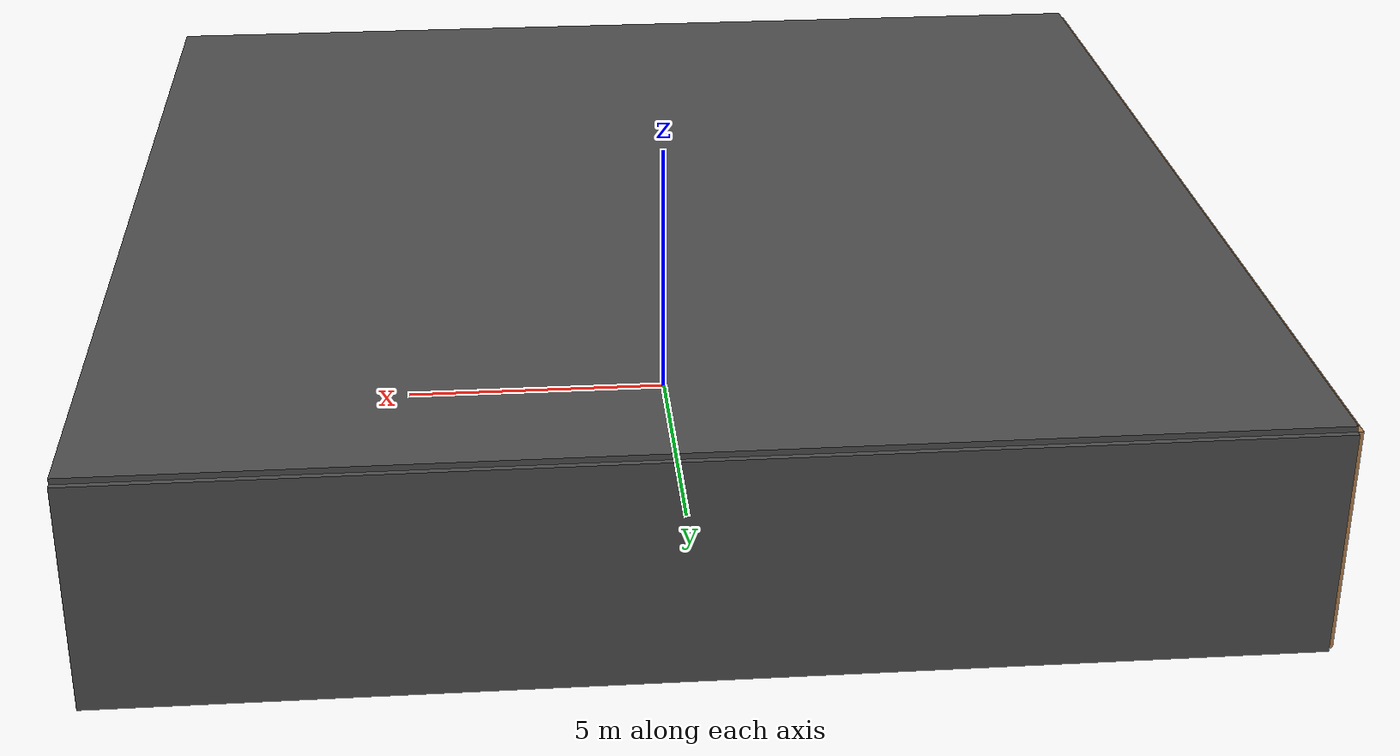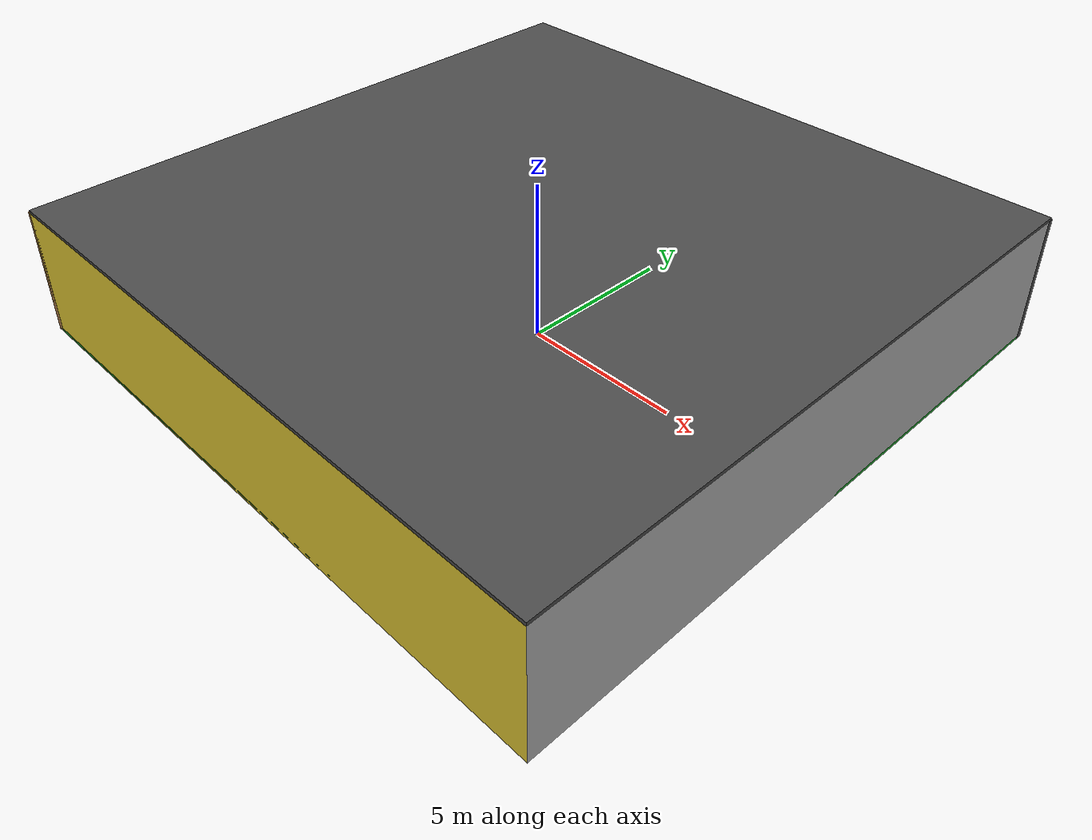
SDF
<sdf version="1.4">
 <world name="default">
  <physics type="ode">
   <max_step_size>0.001</max_step_size>
   <real_time_factor>1</real_time_factor>
   <real_time_update_rate>1000</real_time_update_rate>
   <gravity>0 0 -9.8</gravity>
  </physics>
  <scene><ambient>0.4 0.4 0.4 1</ambient><background>0.7 0.7 0.7 1</background><shadows>1</shadows></scene>
  <model name="Surrounding">
   <static>1</static>
   <link name="Ceiling">
    <collision name="Ceiling_Collision"><geometry><box><size>20 20 0.1</size></box></geometry></collision>
    <visual name="Ceiling_Visual">
     <geometry><box><size>20 20 0.1</size></box></geometry>
     <material>
      <script><uri>file://media/materials/scripts/gazebo.material</uri><name>Gazebo/DarkGrey</name></script>
     </material>
    </visual>
    <pose>0 0 4.05 0 0 0</pose>
   </link>
   <link name="Wall_South">
    <collision name="Wall_South_Collision">
     <geometry><box><size>20 0 4</size></box></geometry>
     <pose>0 0 2 0 -0 0</pose>
    </collision>
    <visual name="Wall_South_Visual">
     <pose>0 0 2 0 -0 0</pose>
     <geometry><box><size>20 0 4</size></box></geometry>
     <material>
      <script><uri>file://media/materials/scripts/gazebo.material</uri><name>Gazebo/ZincYellow</name></script>
     </material>
    </visual>
    <velocity_decay><linear>0</linear><angular>0</angular></velocity_decay>
    <pose>0 -10 0 0 -0 0</pose>
   </link>
   <link name="Wall_East">
    <collision name="Wall_21_Collision">
     <geometry><box><size>20 0 4</size></box></geometry>
     <pose>0 0 2 0 -0 0</pose>
    </collision>
    <visual name="Wall_21_Visual">
     <pose>0 0 2 0 -0 0</pose>
     <geometry><box><size>20 0 4</size></box></geometry>
     <material>
      <script><uri>file://media/materials/scripts/gazebo.material</uri><name>Gazebo/Pioneer2Body</name></script>
     </material>
    </visual>
    <velocity_decay><linear>0</linear><angular>0</angular></velocity_decay>
    <pose>10 0 0 0 -0 1.5708</pose>
   </link>
   <link name="Wall_North">
    <collision name="Wall_22_Collision">
     <geometry><box><size>20 0.2 4</size></box></geometry>
     <pose>0 0 2 0 -0 0</pose>
    </collision>
    <visual name="Wall_22_Visual">
     <pose>0 0 2 0 -0 0</pose>
     <geometry><box><size>20 0.2 4</size></box></geometry>
     <material>
      <script><uri>file://media/materials/scripts/gazebo.material</uri><name>Gazebo/DarkGrey</name></script>
     </material>
    </visual>
    <velocity_decay><linear>0</linear><angular>0</angular></velocity_decay>
    <pose>0 10 0 0 -0 0</pose>
   </link>
   <link name="Wall_West">
    <collision name="Wall_23_Collision">
     <geometry><box><size>20 0.2 4</size></box></geometry>
     <pose>0 0 2 0 -0 0</pose>
    </collision>
    <visual name="Wall_23_Visual">
     <pose>0 0 2 0 -0 0</pose>
     <geometry><box><size>20 0.2 4</size></box></geometry>
     <material>
      <script><uri>file://media/materials/scripts/gazebo.material</uri><name>Gazebo/WoodFloor</name></script>
     </material>
    </visual>
    <velocity_decay><linear>0</linear><angular>0</angular></velocity_decay>
    <pose>-10 0 0 0 0 -1.5708</pose>
   </link>
   <link name="Ground_link">
    <collision name="collision">
     <pose>0 0 .05 0 -0 0</pose>
     <geometry><box><size>20 20 0.1</size></box></geometry>
    </collision>
    <visual name="visual">
     <pose>0 0 .05 0 -0 0</pose>
     <geometry><box><size>20 20 0.1</size></box></geometry>
     <material>
      <script><uri>file://media/materials/scripts/gazebo.material</uri><name>Gazebo/GreenGlow</name></script>
     </material>
    </visual>
   </link>
   <static>1</static>
  </model>
  <spherical_coordinates>
   <surface_model>EARTH_WGS84</surface_model>
   <latitude_deg>0</latitude_deg>
   <longitude_deg>0</longitude_deg>
   <elevation>0</elevation>
   <heading_deg>0</heading_deg>
  </spherical_coordinates>
  <light name="lightball_0" type="diffuse">
   <diffuse>0.8 0.8 0.8 1</diffuse>
   <specular>0.2 0.2 0.2 1</specular>
   <attenuation>
    <range>100</range>
    <constant>0.7</constant>
    <linear>0.01</linear>
    <quadratic>0.001</quadratic>
   </attenuation>
   <direction>-0.5 0.1 -0.9</direction>
   <pose>0.848115236214 -4.30683772874 1.21618090877 0 0 0</pose>
  </light>
  <light name="lightball_1" type="diffuse">
   <diffuse>0.8 0.8 0.8 1</diffuse>
   <specular>0.2 0.2 0.2 1</specular>
   <attenuation>
    <range>100</range>
    <constant>0.7</constant>
    <linear>0.01</linear>
    <quadratic>0.001</quadratic>
   </attenuation>
   <direction>-0.5 0.1 -0.9</direction>
   <pose>4.81505241002 -6.25940259322 1.24946827652 0 0 0</pose>
  </light>
  <light name="lightball_2" type="diffuse">
   <diffuse>0.8 0.8 0.8 1</diffuse>
   <specular>0.2 0.2 0.2 1</specular>
   <attenuation>
    <range>100</range>
    <constant>0.7</constant>
    <linear>0.01</linear>
    <quadratic>0.001</quadratic>
   </attenuation>
   <direction>-0.5 0.1 -0.9</direction>
   <pose>0.149587701673 -9.5704803003 1.26076353499 0 0 0</pose>
  </light>
  <light name="lightball_3" type="diffuse">
   <diffuse>0.8 0.8 0.8 1</diffuse>
   <specular>0.2 0.2 0.2 1</specular>
   <attenuation>
    <range>100</range>
    <constant>0.7</constant>
    <linear>0.01</linear>
    <quadratic>0.001</quadratic>
   </attenuation>
   <direction>-0.5 0.1 -0.9</direction>
   <pose>-0.569792703865 -4.80156291669 0.556521829189 0 0 0</pose>
  </light>
  <light name="lightball_4" type="diffuse">
   <diffuse>0.8 0.8 0.8 1</diffuse>
   <specular>0.2 0.2 0.2 1</specular>
   <attenuation>
    <range>100</range>
    <constant>0.7</constant>
    <linear>0.01</linear>
    <quadratic>0.001</quadratic>
   </attenuation>
   <direction>-0.5 0.1 -0.9</direction>
   <pose>-4.81245884176 7.44577345199 3.29034895906 0 0 0</pose>
  </light>
  <light name="lightball_5" type="diffuse">
   <diffuse>0.8 0.8 0.8 1</diffuse>
   <specular>0.2 0.2 0.2 1</specular>
   <attenuation>
    <range>100</range>
    <constant>0.7</constant>
    <linear>0.01</linear>
    <quadratic>0.001</quadratic>
   </attenuation>
   <direction>-0.5 0.1 -0.9</direction>
   <pose>-9.18553868359 7.2658797555 0.525630661156 0 0 0</pose>
  </light>
  <include><uri>model://table</uri><pose>-7.03508805003 4.48040613194 0 0 0 2.71448232407</pose></include>
  <include>
   <uri>model://construction_cone</uri>
   <pose>-7.43879531908 7.9811336139 0 0 0 1.32903218864</pose>
  </include>
  <include><uri>model://table</uri><pose>-4.29231181873 7.97851755064 0 0 0 1.27709363155</pose></include>
  <include><uri>model://cabinet</uri><pose>-1.13533182488 -8.25785135875 0 0 0 0.862611821174</pose></include>
  <include>
   <uri>model://construction_cone</uri>
   <pose>-1.13775436409 -4.97935301759 0 0 0 2.06999310636</pose>
  </include>
  <include><uri>model://cabinet</uri><pose>7.41620215757 -5.07760518873 0 0 0 2.33293564937</pose></include>
  <include><uri>model://cabinet</uri><pose>8.14080541934 3.86932042963 0 0 0 1.28902463297</pose></include>
 </world>
</sdf>

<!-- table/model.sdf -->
<sdf version="1.5">
  <model name="table">
    <static>true</static>
    <link name="link">
      <collision name="surface">
        <pose>0 0 1.0 0 0 0</pose>
        <geometry>
          <box>
            <size>1.5 0.8 0.03</size>
          </box>
        </geometry>
        <surface>
          <friction>
            <ode>
              <mu>0.6</mu>
              <mu2>0.6</mu2>
            </ode>
          </friction>
        </surface>
      </collision>
      <visual name="visual1">
        <pose>0 0 1.0 0 0 0</pose>
        <geometry>
          <box>
            <size>1.5 0.8 0.03</size>
          </box>
        </geometry>
        <material>
          <script>
            <uri>model://media/materials/scripts/gazebo.material</uri>
            <name>Gazebo/Wood</name>
          </script>
        </material>
      </visual>
      <collision name="front_left_leg">
        <pose>0.68 0.38 0.5 0 0 0</pose>
        <geometry>
          <cylinder>
            <radius>0.02</radius>
            <length>1.0</length>
          </cylinder>
        </geometry>
      </collision>
      <visual name="front_left_leg">
        <pose>0.68 0.38 0.5 0 0 0</pose>
        <geometry>
          <cylinder>
            <radius>0.02</radius>
            <length>1.0</length>
          </cylinder>
        </geometry>
        <material>
          <script>
            <uri>model://media/materials/scripts/gazebo.material</uri>
            <name>Gazebo/Grey</name>
          </script>
        </material>
      </visual>
      <collision name="front_right_leg">
        <pose>0.68 -0.38 0.5 0 0 0</pose>
        <geometry>
          <cylinder>
            <radius>0.02</radius>
            <length>1.0</length>
          </cylinder>
        </geometry>
      </collision>
      <visual name="front_right_leg">
        <pose>0.68 -0.38 0.5 0 0 0</pose>
        <geometry>
          <cylinder>
            <radius>0.02</radius>
            <length>1.0</length>
          </cylinder>
        </geometry>
        <material>
          <script>
            <uri>model://media/materials/scripts/gazebo.material</uri>
            <name>Gazebo/Grey</name>
          </script>
        </material>
      </visual>
      <collision name="back_right_leg">
        <pose>-0.68 -0.38 0.5 0 0 0</pose>
        <geometry>
          <cylinder>
            <radius>0.02</radius>
            <length>1.0</length>
          </cylinder>
        </geometry>
      </collision>
      <visual name="back_right_leg">
        <pose>-0.68 -0.38 0.5 0 0 0</pose>
        <geometry>
          <cylinder>
            <radius>0.02</radius>
            <length>1.0</length>
          </cylinder>
        </geometry>
        <material>
          <script>
            <uri>model://media/materials/scripts/gazebo.material</uri>
            <name>Gazebo/Grey</name>
          </script>
        </material>
      </visual>
      <collision name="back_left_leg">
        <pose>-0.68 0.38 0.5 0 0 0</pose>
        <geometry>
          <cylinder>
            <radius>0.02</radius>
            <length>1.0</length>
          </cylinder>
        </geometry>
      </collision>
      <visual name="back_left_leg">
        <pose>-0.68 0.38 0.5 0 0 0</pose>
        <geometry>
          <cylinder>
            <radius>0.02</radius>
            <length>1.0</length>
          </cylinder>
        </geometry>
        <material>
          <script>
            <uri>model://media/materials/scripts/gazebo.material</uri>
            <name>Gazebo/Grey</name>
          </script>
        </material>
      </visual>
    </link>
  </model>
</sdf>

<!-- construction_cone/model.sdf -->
<sdf version="1.5">
  <model name="Construction Cone">
    <link name="link">
      <collision name="collision">
        <geometry>
          <mesh>
            <scale>10 10 10</scale>
            <uri>file://isr-testbed/construction_cone/meshes/construction_cone.dae</uri>
          </mesh>
        </geometry>
      </collision>
      <visual name="visual">
        <geometry>
          <mesh>
            <scale>10 10 10</scale>
            <uri>file://isr-testbed/construction_cone/meshes/construction_cone.dae</uri>
          </mesh>
        </geometry>
      </visual>
    </link>
  </model>
</sdf>

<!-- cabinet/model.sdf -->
<sdf version="1.5">
  <model name="cabinet">
    <static>true</static>
    <link name="cabinet_bottom_plate">
      <inertial>
        <pose>0 0 -1 0 0 0</pose>
        <inertia>
          <ixx>2.050000</ixx>
          <ixy>0</ixy>
          <ixz>0</ixz>
          <iyy>2.050000</iyy>
          <iyz>0</iyz>
          <izz>2.050000</izz>
        </inertia>
        <mass>25.000000</mass>
      </inertial>
      <collision name="cabinet_bottom_plate_geom">
        <pose>0 0 0.010000 0 0 0</pose>
        <geometry>
          <box>
            <size>0.450000 0.450000 0.020000</size>
          </box>
        </geometry>
      </collision>
      <visual name="cabinet_bottom_plate_geom_visual">
        <pose>0 0 0.010000 0 0 0</pose>
        <geometry>
          <box>
            <size>0.450000 0.450000 0.020000</size>
          </box>
        </geometry>
        <material>
          <script>
            <uri>model://media/materials/scripts/gazebo.material</uri>
            <name>Gazebo/Wood</name>
          </script>
        </material>
      </visual>
      <collision name="cabinet_bottom_plate_geom_cabinet_back_plate">
        <pose>0.235000 0 0.510000 0 0 0</pose>
        <geometry>
          <box>
            <size>0.020000 0.450000 1.020000</size>
          </box>
        </geometry>
      </collision>
      <visual name="cabinet_bottom_plate_geom_cabinet_back_plate_visual">
        <pose>0.235000 0 0.510000 0 0 0</pose>
        <geometry>
          <box>
            <size>0.020000 0.450000 1.020000</size>
          </box>
        </geometry>
        <material>
          <script>
            <uri>model://media/materials/scripts/gazebo.material</uri>
            <name>Gazebo/Wood</name>
          </script>
        </material>
      </visual>
      <collision name="cabinet_bottom_plate_geom_cabinet_left_plate">
        <pose>0 0.235000 0.510000 0 0 0</pose>
        <geometry>
          <box>
            <size>0.450000 0.020000 1.020000</size>
          </box>
        </geometry>
      </collision>
      <visual name="cabinet_bottom_plate_geom_cabinet_left_plate_visual">
        <pose>0 0.235000 0.510000 0 0 0</pose>
        <geometry>
          <box>
            <size>0.450000 0.020000 1.020000</size>
          </box>
        </geometry>
        <material>
          <script>
            <uri>model://media/materials/scripts/gazebo.material</uri>
            <name>Gazebo/Wood</name>
          </script>
        </material>
      </visual>
      <collision name="cabinet_bottom_plate_geom_cabinet_middle_plate">
        <pose>0 0 0.510000 0 0 0</pose>
        <geometry>
          <box>
            <size>0.450000 0.450000 0.020000</size>
          </box>
        </geometry>
      </collision>
      <visual name="cabinet_bottom_plate_geom_cabinet_middle_plate_visual">
        <pose>0 0 0.510000 0 0 0</pose>
        <geometry>
          <box>
            <size>0.450000 0.450000 0.020000</size>
          </box>
        </geometry>
        <material>
          <script>
            <uri>model://media/materials/scripts/gazebo.material</uri>
            <name>Gazebo/Wood</name>
          </script>
        </material>
      </visual>
      <collision name="cabinet_bottom_plate_geom_cabinet_right_plate">
        <pose>0 -0.235000 0.510000 0 0 0</pose>
        <geometry>
          <box>
            <size>0.450000 0.020000 1.020000</size>
          </box>
        </geometry>
      </collision>
      <visual name="cabinet_bottom_plate_geom_cabinet_right_plate_visual">
        <pose>0 -0.235000 0.510000 0 0 0</pose>
        <geometry>
          <box>
            <size>0.450000 0.020000 1.020000</size>
          </box>
        </geometry>
        <material>
          <script>
            <uri>model://media/materials/scripts/gazebo.material</uri>
            <name>Gazebo/Wood</name>
          </script>
        </material>
      </visual>
      <collision name="cabinet_bottom_plate_geom_cabinet_top_plate">
        <pose>0 0 1.010000 0 0 0</pose>
        <geometry>
          <box>
            <size>0.450000 0.450000 0.020000</size>
          </box>
        </geometry>
      </collision>
      <visual name="cabinet_bottom_plate_geom_cabinet_top_plate_visual">
        <pose>0 0 1.010000 0 0 0</pose>
        <geometry>
          <box>
            <size>0.450000 0.450000 0.020000</size>
          </box>
        </geometry>
        <material>
          <script>
            <uri>model://media/materials/scripts/gazebo.material</uri>
            <name>Gazebo/Wood</name>
          </script>
        </material>
      </visual>
    </link>
  </model>
</sdf>
